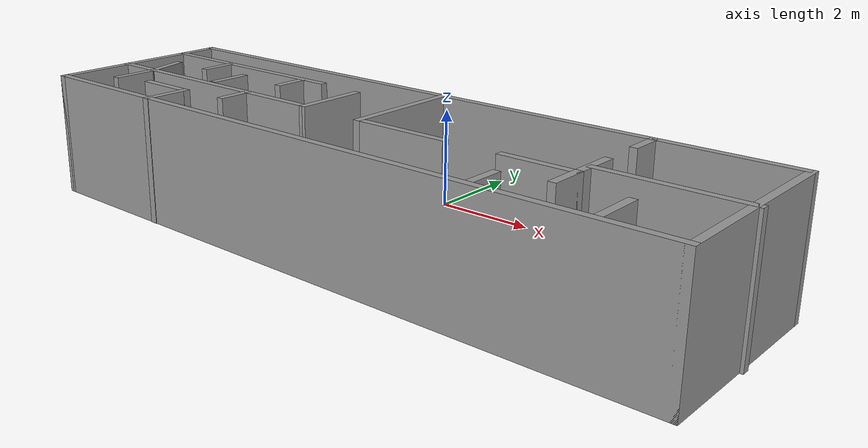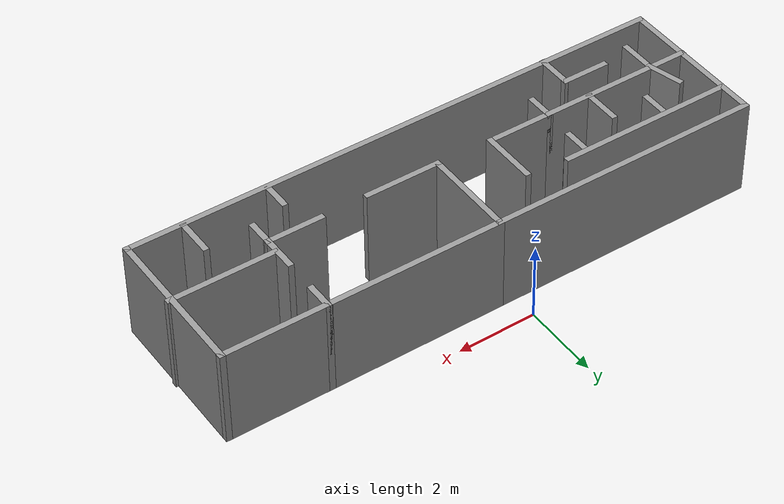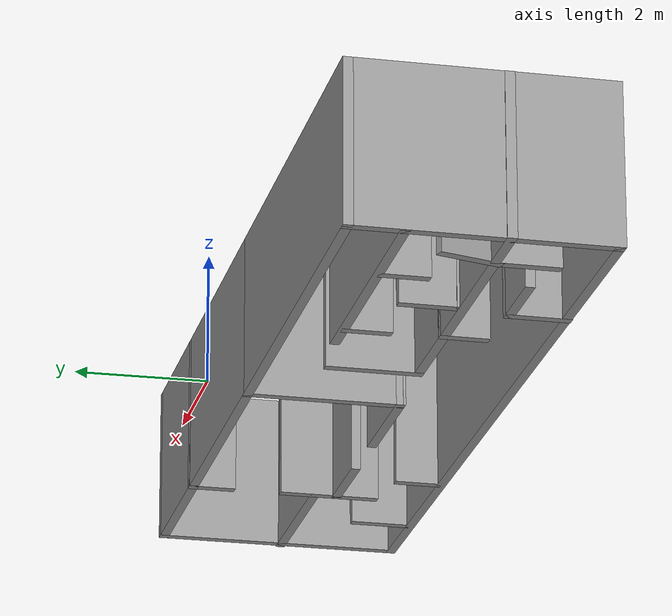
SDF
<?xml version='1.0'?>
<sdf version='1.7'>
  <model name='small_house_v2'>
    <pose>0.55 -2.3175 0 0 -0 0</pose>
    <link name='Wall_0'>
      <collision name='Wall_0_Collision'>
        <geometry>
          <box>
            <size>7 0.15 2.5</size>
          </box>
        </geometry>
        <pose>0 0 1.25 0 -0 0</pose>
      </collision>
      <visual name='Wall_0_Visual'>
        <pose>0 0 1.25 0 -0 0</pose>
        <geometry>
          <box>
            <size>7 0.15 2.5</size>
          </box>
        </geometry>
        <material>
          <script>
            <uri>file://media/materials/scripts/gazebo.material</uri>
            <name>Gazebo/Grey</name>
          </script>
          <ambient>1 1 1 1</ambient>
        </material>
        <meta>
          <layer>0</layer>
        </meta>
      </visual>
      <pose>-3.525 1.6175 0 0 -0 3.14159</pose>
    </link>
    <link name='Wall_1'>
      <collision name='Wall_1_Collision'>
        <geometry>
          <box>
            <size>4 0.15 2.5</size>
          </box>
        </geometry>
        <pose>0 0 1.25 0 -0 0</pose>
      </collision>
      <visual name='Wall_1_Visual'>
        <pose>0 0 1.25 0 -0 0</pose>
        <geometry>
          <box>
            <size>4 0.15 2.5</size>
          </box>
        </geometry>
        <material>
          <script>
            <uri>file://media/materials/scripts/gazebo.material</uri>
            <name>Gazebo/Grey</name>
          </script>
          <ambient>1 1 1 1</ambient>
        </material>
        <meta>
          <layer>0</layer>
        </meta>
      </visual>
      <pose>-6.95 -0.3075 0 0 -0 -1.5708</pose>
    </link>
    <link name='Wall_11'>
      <collision name='Wall_11_Collision'>
        <geometry>
          <box>
            <size>0.16 0.15 2.5</size>
          </box>
        </geometry>
        <pose>0 0 1.25 0 -0 0</pose>
      </collision>
      <visual name='Wall_11_Visual'>
        <pose>0 0 1.25 0 -0 0</pose>
        <geometry>
          <box>
            <size>0.16 0.15 2.5</size>
          </box>
        </geometry>
        <material>
          <script>
            <uri>file://media/materials/scripts/gazebo.material</uri>
            <name>Gazebo/Grey</name>
          </script>
          <ambient>1 1 1 1</ambient>
        </material>
        <meta>
          <layer>0</layer>
        </meta>
      </visual>
      <pose>4.315 1.6175 0 0 -0 0</pose>
    </link>
    <link name='Wall_12'>
      <collision name='Wall_12_Collision'>
        <geometry>
          <box>
            <size>0.75 0.15 2.5</size>
          </box>
        </geometry>
        <pose>0 0 1.25 0 -0 0</pose>
      </collision>
      <visual name='Wall_12_Visual'>
        <pose>0 0 1.25 0 -0 0</pose>
        <geometry>
          <box>
            <size>0.75 0.15 2.5</size>
          </box>
        </geometry>
        <material>
          <script>
            <uri>file://media/materials/scripts/gazebo.material</uri>
            <name>Gazebo/Grey</name>
          </script>
          <ambient>1 1 1 1</ambient>
        </material>
        <meta>
          <layer>0</layer>
        </meta>
      </visual>
      <pose>4.32 1.3175 0 0 -0 -1.5708</pose>
    </link>
    <link name='Wall_15'>
      <collision name='Wall_15_Collision'>
        <geometry>
          <box>
            <size>2.75 0.15 2.5</size>
          </box>
        </geometry>
        <pose>0 0 1.25 0 -0 0</pose>
      </collision>
      <visual name='Wall_15_Visual'>
        <pose>0 0 1.25 0 -0 0</pose>
        <geometry>
          <box>
            <size>2.75 0.15 2.5</size>
          </box>
        </geometry>
        <material>
          <script>
            <uri>file://media/materials/scripts/gazebo.material</uri>
            <name>Gazebo/Grey</name>
          </script>
          <ambient>1 1 1 1</ambient>
        </material>
        <meta>
          <layer>0</layer>
        </meta>
      </visual>
      <pose>5.66 -0.3625 0 0 -0 0</pose>
    </link>
    <link name='Wall_17'>
      <collision name='Wall_17_Collision'>
        <geometry>
          <box>
            <size>0.75 0.15 2.5</size>
          </box>
        </geometry>
        <pose>0 0 1.25 0 -0 0</pose>
      </collision>
      <visual name='Wall_17_Visual'>
        <pose>0 0 1.25 0 -0 0</pose>
        <geometry>
          <box>
            <size>0.75 0.15 2.5</size>
          </box>
        </geometry>
        <material>
          <script>
            <uri>file://media/materials/scripts/gazebo.material</uri>
            <name>Gazebo/Grey</name>
          </script>
          <ambient>1 1 1 1</ambient>
        </material>
        <meta>
          <layer>0</layer>
        </meta>
      </visual>
      <pose>3.4 -1.8525 0 0 -0 -1.5708</pose>
    </link>
    <link name='Wall_2'>
      <collision name='Wall_2_Collision'>
        <geometry>
          <box>
            <size>14 0.15 2.5</size>
          </box>
        </geometry>
        <pose>0 0 1.25 0 -0 0</pose>
      </collision>
      <visual name='Wall_2_Visual'>
        <pose>0 0 1.25 0 -0 0</pose>
        <geometry>
          <box>
            <size>14 0.15 2.5</size>
          </box>
        </geometry>
        <material>
          <script>
            <uri>file://media/materials/scripts/gazebo.material</uri>
            <name>Gazebo/Grey</name>
          </script>
          <ambient>1 1 1 1</ambient>
        </material>
        <meta>
          <layer>0</layer>
        </meta>
      </visual>
      <pose>-0.025 -2.2325 0 0 -0 0</pose>
    </link>
    <link name='Wall_20'>
      <collision name='Wall_20_Collision'>
        <geometry>
          <box>
            <size>0.75 0.15 2.5</size>
          </box>
        </geometry>
        <pose>0 0 1.25 0 -0 0</pose>
      </collision>
      <visual name='Wall_20_Visual'>
        <pose>0 0 1.25 0 -0 0</pose>
        <geometry>
          <box>
            <size>0.75 0.15 2.5</size>
          </box>
        </geometry>
        <material>
          <script>
            <uri>file://media/materials/scripts/gazebo.material</uri>
            <name>Gazebo/Grey</name>
          </script>
          <ambient>1 1 1 1</ambient>
        </material>
        <meta>
          <layer>0</layer>
        </meta>
      </visual>
      <pose>4.31 -1.0225 0 0 -0 -1.5708</pose>
    </link>
    <link name='Wall_22'>
      <collision name='Wall_22_Collision'>
        <geometry>
          <box>
            <size>1 0.15 2.5</size>
          </box>
        </geometry>
        <pose>0 0 1.25 0 -0 0</pose>
      </collision>
      <visual name='Wall_22_Visual'>
        <pose>0 0 1.25 0 -0 0</pose>
        <geometry>
          <box>
            <size>1 0.15 2.5</size>
          </box>
        </geometry>
        <material>
          <script>
            <uri>file://media/materials/scripts/gazebo.material</uri>
            <name>Gazebo/Grey</name>
          </script>
          <ambient>1 1 1 1</ambient>
        </material>
        <meta>
          <layer>0</layer>
        </meta>
      </visual>
      <pose>5.53 -1.7375 0 0 -0 1.5708</pose>
    </link>
    <link name='Wall_24'>
      <collision name='Wall_24_Collision'>
        <geometry>
          <box>
            <size>4 0.15 2.5</size>
          </box>
        </geometry>
        <pose>0 0 1.25 0 -0 0</pose>
      </collision>
      <visual name='Wall_24_Visual'>
        <pose>0 0 1.25 0 -0 0</pose>
        <geometry>
          <box>
            <size>4 0.15 2.5</size>
          </box>
        </geometry>
        <material>
          <script>
            <uri>file://media/materials/scripts/gazebo.material</uri>
            <name>Gazebo/Grey</name>
          </script>
          <ambient>1 1 1 1</ambient>
        </material>
        <meta>
          <layer>0</layer>
        </meta>
      </visual>
      <pose>-5.035 -0.6825 0 0 -0 0</pose>
    </link>
    <link name='Wall_25'>
      <collision name='Wall_25_Collision'>
        <geometry>
          <box>
            <size>0.75 0.15 2.5</size>
          </box>
        </geometry>
        <pose>0 0 1.25 0 -0 0</pose>
      </collision>
      <visual name='Wall_25_Visual'>
        <pose>0 0 1.25 0 -0 0</pose>
        <geometry>
          <box>
            <size>0.75 0.15 2.5</size>
          </box>
        </geometry>
        <material>
          <script>
            <uri>file://media/materials/scripts/gazebo.material</uri>
            <name>Gazebo/Grey</name>
          </script>
          <ambient>1 1 1 1</ambient>
        </material>
        <meta>
          <layer>0</layer>
        </meta>
      </visual>
      <pose>-3.11 -0.9825 0 0 -0 -1.5708</pose>
    </link>
    <link name='Wall_27'>
      <collision name='Wall_27_Collision'>
        <geometry>
          <box>
            <size>1 0.15 2.5</size>
          </box>
        </geometry>
        <pose>0 0 1.25 0 -0 0</pose>
      </collision>
      <visual name='Wall_27_Visual'>
        <pose>0 0 1.25 0 -0 0</pose>
        <geometry>
          <box>
            <size>1 0.15 2.5</size>
          </box>
        </geometry>
        <material>
          <script>
            <uri>file://media/materials/scripts/gazebo.material</uri>
            <name>Gazebo/Grey</name>
          </script>
          <ambient>1 1 1 1</ambient>
        </material>
        <meta>
          <layer>0</layer>
        </meta>
      </visual>
      <pose>-4.13 -1.8175 0 0 -0 1.5708</pose>
    </link>
    <link name='Wall_28'>
      <collision name='Wall_28_Collision'>
        <geometry>
          <box>
            <size>1.25 0.15 2.5</size>
          </box>
        </geometry>
        <pose>0 0 1.25 0 -0 0</pose>
      </collision>
      <visual name='Wall_28_Visual'>
        <pose>0 0 1.25 0 -0 0</pose>
        <geometry>
          <box>
            <size>1.25 0.15 2.5</size>
          </box>
        </geometry>
        <material>
          <script>
            <uri>file://media/materials/scripts/gazebo.material</uri>
            <name>Gazebo/Grey</name>
          </script>
          <ambient>1 1 1 1</ambient>
        </material>
        <meta>
          <layer>0</layer>
        </meta>
      </visual>
      <pose>-4.68 -1.3925 0 0 -0 3.14159</pose>
    </link>
    <link name='Wall_3'>
      <collision name='Wall_3_Collision'>
        <geometry>
          <box>
            <size>4 0.15 2.5</size>
          </box>
        </geometry>
        <pose>0 0 1.25 0 -0 0</pose>
      </collision>
      <visual name='Wall_3_Visual'>
        <pose>0 0 1.25 0 -0 0</pose>
        <geometry>
          <box>
            <size>4 0.15 2.5</size>
          </box>
        </geometry>
        <material>
          <script>
            <uri>file://media/materials/scripts/gazebo.material</uri>
            <name>Gazebo/Grey</name>
          </script>
          <ambient>1 1 1 1</ambient>
        </material>
        <meta>
          <layer>0</layer>
        </meta>
      </visual>
      <pose>6.9 -0.3075 0 0 -0 1.5708</pose>
    </link>
    <link name='Wall_30'>
      <collision name='Wall_30_Collision'>
        <geometry>
          <box>
            <size>1 0.15 2.5</size>
          </box>
        </geometry>
        <pose>0 0 1.25 0 -0 0</pose>
      </collision>
      <visual name='Wall_30_Visual'>
        <pose>0 0 1.25 0 -0 0</pose>
        <geometry>
          <box>
            <size>1 0.15 2.5</size>
          </box>
        </geometry>
        <material>
          <script>
            <uri>file://media/materials/scripts/gazebo.material</uri>
            <name>Gazebo/Grey</name>
          </script>
          <ambient>1 1 1 1</ambient>
        </material>
        <meta>
          <layer>0</layer>
        </meta>
      </visual>
      <pose>-6.04 -1.1475 0 0 -0 -1.5708</pose>
    </link>
    <link name='Wall_32'>
      <collision name='Wall_32_Collision'>
        <geometry>
          <box>
            <size>1.75 0.15 2.5</size>
          </box>
        </geometry>
        <pose>0 0 1.25 0 -0 0</pose>
      </collision>
      <visual name='Wall_32_Visual'>
        <pose>0 0 1.25 0 -0 0</pose>
        <geometry>
          <box>
            <size>1.75 0.15 2.5</size>
          </box>
        </geometry>
        <material>
          <script>
            <uri>file://media/materials/scripts/gazebo.material</uri>
            <name>Gazebo/Grey</name>
          </script>
          <ambient>1 1 1 1</ambient>
        </material>
        <meta>
          <layer>0</layer>
        </meta>
      </visual>
      <pose>-2.31 -0.6825 0 0 -0 0</pose>
    </link>
    <link name='Wall_33'>
      <collision name='Wall_33_Collision'>
        <geometry>
          <box>
            <size>1.5 0.15 2.5</size>
          </box>
        </geometry>
        <pose>0 0 1.25 0 -0 0</pose>
      </collision>
      <visual name='Wall_33_Visual'>
        <pose>0 0 1.25 0 -0 0</pose>
        <geometry>
          <box>
            <size>1.5 0.15 2.5</size>
          </box>
        </geometry>
        <material>
          <script>
            <uri>file://media/materials/scripts/gazebo.material</uri>
            <name>Gazebo/Grey</name>
          </script>
          <ambient>1 1 1 1</ambient>
        </material>
        <meta>
          <layer>0</layer>
        </meta>
      </visual>
      <pose>-1.51 -0.0075 0 0 -0 1.5708</pose>
    </link>
    <link name='Wall_35'>
      <collision name='Wall_35_Collision'>
        <geometry>
          <box>
            <size>4.5 0.15 2.5</size>
          </box>
        </geometry>
        <pose>0 0 1.25 0 -0 0</pose>
      </collision>
      <visual name='Wall_35_Visual'>
        <pose>0 0 1.25 0 -0 0</pose>
        <geometry>
          <box>
            <size>4.5 0.15 2.5</size>
          </box>
        </geometry>
        <material>
          <script>
            <uri>file://media/materials/scripts/gazebo.material</uri>
            <name>Gazebo/Grey</name>
          </script>
          <ambient>1 1 1 1</ambient>
        </material>
        <meta>
          <layer>0</layer>
        </meta>
      </visual>
      <pose>-4.735 0.8075 0 0 -0 0</pose>
    </link>
    <link name='Wall_37'>
      <collision name='Wall_37_Collision'>
        <geometry>
          <box>
            <size>0.75 0.15 2.5</size>
          </box>
        </geometry>
        <pose>0 0 1.25 0 -0 0</pose>
      </collision>
      <visual name='Wall_37_Visual'>
        <pose>0 0 1.25 0 -0 0</pose>
        <geometry>
          <box>
            <size>0.75 0.15 2.5</size>
          </box>
        </geometry>
        <material>
          <script>
            <uri>file://media/materials/scripts/gazebo.material</uri>
            <name>Gazebo/Grey</name>
          </script>
          <ambient>1 1 1 1</ambient>
        </material>
        <meta>
          <layer>0</layer>
        </meta>
      </visual>
      <pose>-3.07 0.4575 0 0 -0 -1.5708</pose>
    </link>
    <link name='Wall_39'>
      <collision name='Wall_39_Collision'>
        <geometry>
          <box>
            <size>0.16 0.15 2.5</size>
          </box>
        </geometry>
        <pose>0 0 1.25 0 -0 0</pose>
      </collision>
      <visual name='Wall_39_Visual'>
        <pose>0 0 1.25 0 -0 0</pose>
        <geometry>
          <box>
            <size>0.16 0.15 2.5</size>
          </box>
        </geometry>
        <material>
          <script>
            <uri>file://media/materials/scripts/gazebo.material</uri>
            <name>Gazebo/Grey</name>
          </script>
          <ambient>1 1 1 1</ambient>
        </material>
        <meta>
          <layer>0</layer>
        </meta>
      </visual>
      <pose>-4.265 -0.6425 0 0 -0 0</pose>
    </link>
    <link name='Wall_4'>
      <collision name='Wall_4_Collision'>
        <geometry>
          <box>
            <size>7.15 0.15 2.5</size>
          </box>
        </geometry>
        <pose>0 0 1.25 0 -0 0</pose>
      </collision>
      <visual name='Wall_4_Visual'>
        <pose>0 0 1.25 0 -0 0</pose>
        <geometry>
          <box>
            <size>7.15 0.15 2.5</size>
          </box>
        </geometry>
        <material>
          <script>
            <uri>file://media/materials/scripts/gazebo.material</uri>
            <name>Gazebo/Grey</name>
          </script>
          <ambient>1 1 1 1</ambient>
        </material>
        <meta>
          <layer>0</layer>
        </meta>
      </visual>
      <pose>3.4 1.6175 0 0 -0 3.14159</pose>
    </link>
    <link name='Wall_40'>
      <collision name='Wall_40_Collision'>
        <geometry>
          <box>
            <size>1 0.15 2.5</size>
          </box>
        </geometry>
        <pose>0 0 1.25 0 -0 0</pose>
      </collision>
      <visual name='Wall_40_Visual'>
        <pose>0 0 1.25 0 -0 0</pose>
        <geometry>
          <box>
            <size>1 0.15 2.5</size>
          </box>
        </geometry>
        <material>
          <script>
            <uri>file://media/materials/scripts/gazebo.material</uri>
            <name>Gazebo/Grey</name>
          </script>
          <ambient>1 1 1 1</ambient>
        </material>
        <meta>
          <layer>0</layer>
        </meta>
      </visual>
      <pose>-4.26 -0.2175 0 0 -0 1.5708</pose>
    </link>
    <link name='Wall_42'>
      <collision name='Wall_42_Collision'>
        <geometry>
          <box>
            <size>0.75 0.15 2.5</size>
          </box>
        </geometry>
        <pose>0 0 1.25 0 -0 0</pose>
      </collision>
      <visual name='Wall_42_Visual'>
        <pose>0 0 1.25 0 -0 0</pose>
        <geometry>
          <box>
            <size>0.75 0.15 2.5</size>
          </box>
        </geometry>
        <material>
          <script>
            <uri>file://media/materials/scripts/gazebo.material</uri>
            <name>Gazebo/Grey</name>
          </script>
          <ambient>1 1 1 1</ambient>
        </material>
        <meta>
          <layer>0</layer>
        </meta>
      </visual>
      <pose>-5.3 0.4275 0 0 -0 -1.5708</pose>
    </link>
    <link name='Wall_45'>
      <collision name='Wall_45_Collision'>
        <geometry>
          <box>
            <size>1 0.15 2.5</size>
          </box>
        </geometry>
        <pose>0 0 1.25 0 -0 0</pose>
      </collision>
      <visual name='Wall_45_Visual'>
        <pose>0 0 1.25 0 -0 0</pose>
        <geometry>
          <box>
            <size>1 0.15 2.5</size>
          </box>
        </geometry>
        <material>
          <script>
            <uri>file://media/materials/scripts/gazebo.material</uri>
            <name>Gazebo/Grey</name>
          </script>
          <ambient>1 1 1 1</ambient>
        </material>
        <meta>
          <layer>0</layer>
        </meta>
      </visual>
      <pose>-6.15 -0.311981 0 0 -0 1.8326</pose>
    </link>
    <link name='Wall_5'>
      <collision name='Wall_5_Collision'>
        <geometry>
          <box>
            <size>2.5 0.15 2.5</size>
          </box>
        </geometry>
        <pose>0 0 1.25 0 -0 0</pose>
      </collision>
      <visual name='Wall_5_Visual'>
        <pose>0 0 1.25 0 -0 0</pose>
        <geometry>
          <box>
            <size>2.5 0.15 2.5</size>
          </box>
        </geometry>
        <material>
          <script>
            <uri>file://media/materials/scripts/gazebo.material</uri>
            <name>Gazebo/Grey</name>
          </script>
          <ambient>1 1 1 1</ambient>
        </material>
        <meta>
          <layer>0</layer>
        </meta>
      </visual>
      <pose>-0.1 0.4425 0 0 -0 -1.5708</pose>
    </link>
    <link name='Wall_6'>
      <collision name='Wall_6_Collision'>
        <geometry>
          <box>
            <size>2 0.15 2.5</size>
          </box>
        </geometry>
        <pose>0 0 1.25 0 -0 0</pose>
      </collision>
      <visual name='Wall_6_Visual'>
        <pose>0 0 1.25 0 -0 0</pose>
        <geometry>
          <box>
            <size>2 0.15 2.5</size>
          </box>
        </geometry>
        <material>
          <script>
            <uri>file://media/materials/scripts/gazebo.material</uri>
            <name>Gazebo/Grey</name>
          </script>
          <ambient>1 1 1 1</ambient>
        </material>
        <meta>
          <layer>0</layer>
        </meta>
      </visual>
      <pose>0.825 -0.7325 0 0 -0 0</pose>
    </link>
    <link name='Wall_8'>
      <collision name='Wall_8_Collision'>
        <geometry>
          <box>
            <size>1.5 0.15 2.5</size>
          </box>
        </geometry>
        <pose>0 0 1.25 0 -0 0</pose>
      </collision>
      <visual name='Wall_8_Visual'>
        <pose>0 0 1.25 0 -0 0</pose>
        <geometry>
          <box>
            <size>1.5 0.15 2.5</size>
          </box>
        </geometry>
        <material>
          <script>
            <uri>file://media/materials/scripts/gazebo.material</uri>
            <name>Gazebo/Grey</name>
          </script>
          <ambient>1 1 1 1</ambient>
        </material>
        <meta>
          <layer>0</layer>
        </meta>
      </visual>
      <pose>3.635 -0.7225 0 0 -0 0</pose>
    </link>
    <link name='Wall_9'>
      <collision name='Wall_9_Collision'>
        <geometry>
          <box>
            <size>1 0.15 2.5</size>
          </box>
        </geometry>
        <pose>0 0 1.25 0 -0 0</pose>
      </collision>
      <visual name='Wall_9_Visual'>
        <pose>0 0 1.25 0 -0 0</pose>
        <geometry>
          <box>
            <size>1 0.15 2.5</size>
          </box>
        </geometry>
        <material>
          <script>
            <uri>file://media/materials/scripts/gazebo.material</uri>
            <name>Gazebo/Grey</name>
          </script>
          <ambient>1 1 1 1</ambient>
        </material>
        <meta>
          <layer>0</layer>
        </meta>
      </visual>
      <pose>4.31 -0.2975 0 0 -0 1.5708</pose>
    </link>
    <static>1</static>
  </model>
</sdf>
